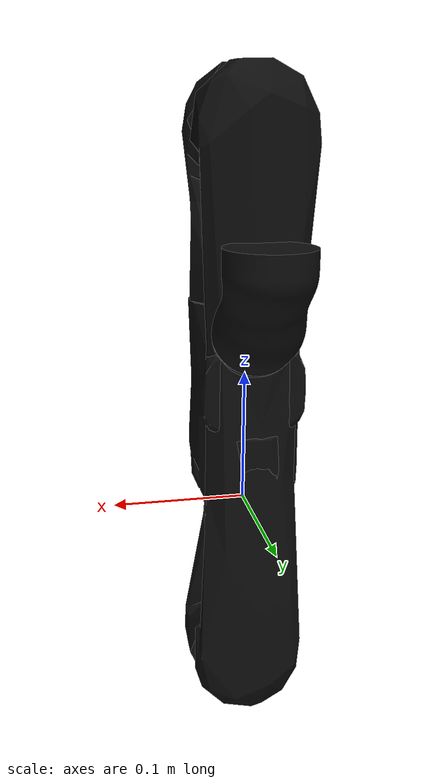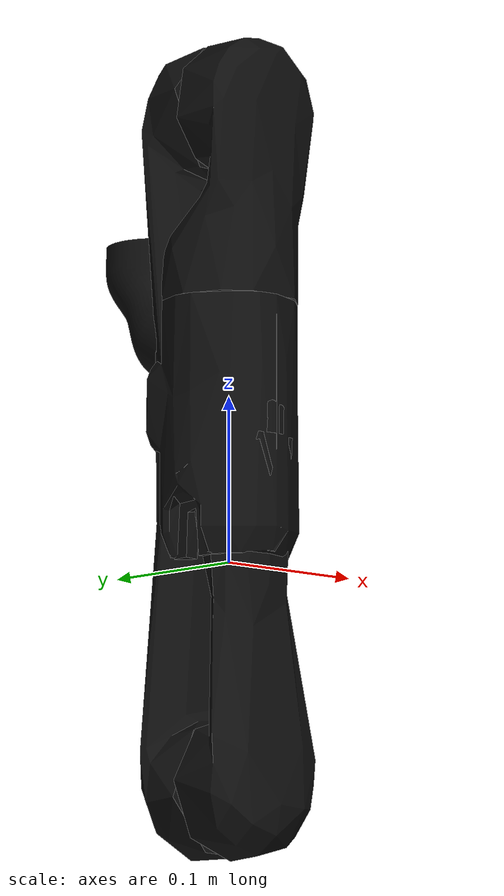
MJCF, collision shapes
<mujoco model="j2n6s200">
  <actuator>
    <motor ctrllimited="true" ctrlrange="-2000 2000" joint="j2n6s200_joint_1" name="torq_j1"/>
    <motor ctrllimited="true" ctrlrange="-2000 2000" joint="j2n6s200_joint_2" name="torq_j2"/>
    <motor ctrllimited="true" ctrlrange="-2000 2000" joint="j2n6s200_joint_3" name="torq_j3"/>
    <motor ctrllimited="true" ctrlrange="-2000 2000" joint="j2n6s200_joint_4" name="torq_j4"/>
    <motor ctrllimited="true" ctrlrange="-2000 2000" joint="j2n6s200_joint_5" name="torq_j5"/>
    <motor ctrllimited="true" ctrlrange="-2000 2000" joint="j2n6s200_joint_6" name="torq_j6"/>
  </actuator>
  <asset>
    <mesh name="base" file="meshes/base.stl"/>
    <mesh name="collision_base" file="meshes/collision_base.stl"/>
    <mesh name="shoulder" file="meshes/shoulder.stl"/>
    <mesh name="ring_big" file="meshes/ring_big.stl"/>
    <mesh name="collision_shoulder" file="meshes/collision_shoulder.stl"/>
    <mesh name="arm" file="meshes/arm.stl"/>
    <mesh name="collision_arm" file="meshes/collision_arm.stl"/>
    <mesh name="forearm" file="meshes/forearm.stl"/>
    <mesh name="collision_forearm" file="meshes/collision_forearm.stl"/>
    <mesh name="wrist" file="meshes/wrist.stl"/>
    <mesh name="ring_small" file="meshes/ring_small.stl"/>
    <mesh name="collision_wrist" file="meshes/collision_wrist.stl"/>
    <mesh name="hand_2finger" file="meshes/hand_2finger.stl"/>
    <mesh name="collision_hand_2finger" file="meshes/collision_hand_2finger.stl"/>
    <mesh name="finger_proximal" file="meshes/finger_proximal.stl"/>
    <mesh name="collision_finger_proximal" file="meshes/collision_finger_proximal.stl"/>
    <mesh name="finger_distal" content_type="model/stl" file="meshes/finger_distal.stl"/>
    <mesh name="collision_finger_distal" file="meshes/collision_finger_distal.stl"/>

    <!-- Materials for robot -->
    <texture type="cube" name="carbon_tex" builtin="flat" width="100" height="100" rgb1="1 1 1" rgb2="1 1 1"/>
    <texture type="cube" name="grey_plastic_tex" builtin="flat" width="100" height="100" rgb1="1 1 1" rgb2="1 1 1"/>
    <material name="carbon_jaco" texture="carbon_tex" rgba="0.05 0.05 0.05 1" />
    <material name="grey_plastic_jaco" texture="grey_plastic_tex" rgba="0.88 0.86 0.86 1" />
  </asset>

  <worldbody>
    <body name="base" pos="0 0 0">
      <!-- robot view -->
      <camera mode="fixed" name="robotview" pos="1.0 0 0.4" quat="0.653 0.271 0.271 0.653"/>
      <inertial diaginertia="0 0 0" mass="0" pos="0 0 0"/>
      <!-- mount attached here -->
      <body name="j2n6s200_link_0" pos="0 0 0">
        <inertial pos="0 0 0.05" mass="4" diaginertia="0.4 0.4 0.4" />
        <geom type="mesh" contype="0" conaffinity="0" group="1" density="0" material="carbon_jaco" mesh="base"/>
        <geom type="mesh" contype="0" conaffinity="1" material="carbon_jaco" mesh="collision_base"/>
        <body name="j2n6s200_link_1" pos="0 0 0.15675" quat="0 0 1 0">
          <inertial pos="0 -0.002 -0.0605" mass="0.7477" diaginertia="0.00152032 0.00152032 0.00059816"/>
          <joint name="j2n6s200_joint_1" pos="0 0 0" axis="0 0 -1" range="-6.28319 6.28319" actuatorfrcrange="-2000 2000"/>
          <geom type="mesh" contype="0" conaffinity="0" group="1" density="0" material="carbon_jaco" mesh="shoulder"/>
          <geom type="mesh" contype="0" conaffinity="0" group="1" density="0" material="grey_plastic_jaco" mesh="ring_big"/>
          <geom type="mesh" contype="0" conaffinity="1" material="carbon_jaco" mesh="collision_shoulder"/>
          <body name="j2n6s200_link_2" pos="0 0.0016 -0.11875" quat="0 0 -0.707107 0.707107">
            <inertial pos="0 -0.2065 -0.01" quat="0.707107 0.707107 0 0" mass="0.99" diaginertia="0.0105022 0.0105022 0.000792"/>
            <joint name="j2n6s200_joint_2" pos="0 0 0" axis="0 0 -1" range="0.820305 5.46288" actuatorfrcrange="-2000 2000"/>
            <geom type="mesh" contype="0" conaffinity="0" group="1" density="0" material="carbon_jaco" mesh="arm"/>
            <geom type="mesh" contype="0" conaffinity="0" group="1" density="0" material="grey_plastic_jaco" mesh="ring_big"/>
            <geom type="mesh" material="carbon_jaco" mesh="collision_arm"/>
            <body name="j2n6s200_link_3" pos="0 -0.41 0" quat="0 0 1 0">
              <inertial pos="0 0.081 -0.0086" quat="0.707107 0.707107 0 0" mass="0.6763" diaginertia="0.00142022 0.00142022 0.000304335"/>
              <joint name="j2n6s200_joint_3" pos="0 0 0" axis="0 0 -1" range="0.331613 5.95157" actuatorfrcrange="-2000 2000"/>
              <geom type="mesh" contype="0" conaffinity="0" group="1" density="0" material="carbon_jaco" mesh="forearm"/>
              <geom type="mesh" contype="0" conaffinity="0" group="1" density="0" material="grey_plastic_jaco" mesh="ring_big"/>
              <geom type="mesh" material="carbon_jaco" mesh="collision_forearm"/>
              <body name="j2n6s200_link_4" pos="0 0.2073 -0.0114" quat="0 0 -0.707107 0.707107">
                <inertial pos="0 -0.037 -0.0642" quat="0.5 0.5 -0.5 0.5" mass="0.1785" diaginertia="0.0001428 7.73497e-05 7.73497e-05"/>
                <joint name="j2n6s200_joint_4" pos="0 0 0" axis="0 0 -1" range="-6.28319 6.28319" actuatorfrcrange="-2000 2000"/>
                <geom type="mesh" contype="0" conaffinity="0" group="1" density="0" material="carbon_jaco" mesh="wrist"/>
                <geom type="mesh" contype="0" conaffinity="0" group="1" density="0" material="grey_plastic_jaco" mesh="ring_small"/>
                <geom type="mesh" material="carbon_jaco" mesh="collision_wrist"/>
                <body name="j2n6s200_link_5" pos="0 -0.03703 -0.06414" quat="0 0 0.5 0.866025">
                  <inertial pos="0 -0.037 -0.0642" quat="0.5 0.5 -0.5 0.5" mass="0.1785" diaginertia="0.0001428 7.73497e-05 7.73497e-05"/>
                  <joint name="j2n6s200_joint_5" pos="0 0 0" axis="0 0 -1" range="-6.28319 6.28319" actuatorfrcrange="-2000 2000"/>
                  <geom type="mesh" contype="0" conaffinity="0" group="1" density="0" material="carbon_jaco" mesh="wrist"/>
                  <geom type="mesh" contype="0" conaffinity="0" group="1" density="0" material="grey_plastic_jaco" mesh="ring_small"/>
                  <geom type="mesh" material="carbon_jaco" mesh="collision_wrist"/>
                  <body name="j2n6s200_link_6" pos="0 -0.03703 -0.06414" quat="0 0 0.5 0.866025">
                    <inertial pos="0 0 -0.06" quat="0.5 0.5 -0.5 0.5" mass="0.78" diaginertia="0.000624 0.000370499 0.000370499"/>
                    <joint name="j2n6s200_joint_6" pos="0 0 0" axis="0 0 -1" range="-6.28319 6.28319" actuatorfrcrange="-2000 2000"/>
                    <body name="right_hand" pos="0 0 0" quat="0 1 0 0">
                        <!-- This camera points out from the eef. -->
                        <camera mode="fixed" name="eye_in_hand" pos="0.08 0 0" quat="0 0.707108 0.707108 0" fovy="75"/>
                        <!-- To add gripper -->
                    </body>
                  </body>
                </body>
              </body>
            </body>
          </body>
        </body>
      </body>
    </body>
  </worldbody>
</mujoco>
